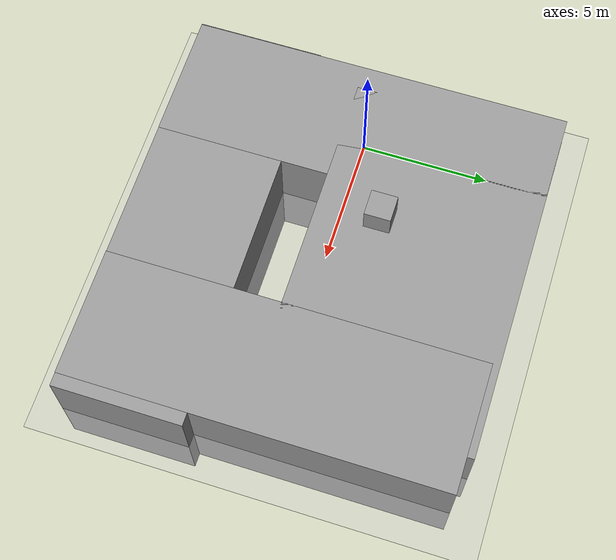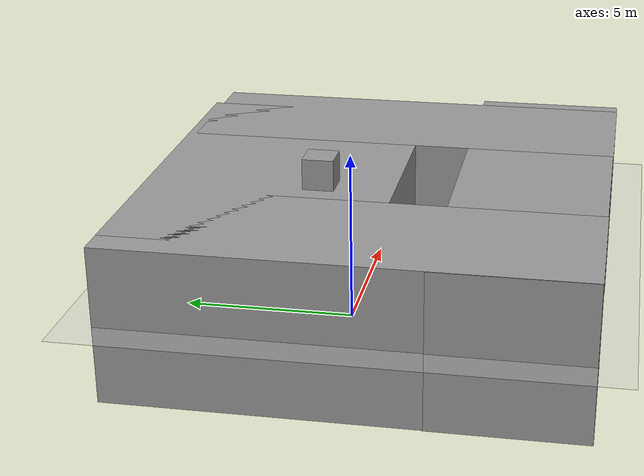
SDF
<sdf version="1.6">
 <world name="base_world">
  <plugin name="gazebo_ros_state" filename="libgazebo_ros_state.so">
   <ros><namespace>/gazebo</namespace><argument>model_states:=model_states_demo</argument></ros>
   <update_rate>1000.0</update_rate>
  </plugin>
  <physics name="default_physics" default="0" type="ode">
   <max_step_size>0.001</max_step_size>
   <real_time_factor>1</real_time_factor>
   <real_time_update_rate>1000</real_time_update_rate>
  </physics>
  <light name="sun" type="directional">
   <pose>0 0 10 0 -0 0</pose>
   <diffuse>0.8 0.8 0.8 1</diffuse>
   <specular>0.2 0.2 0.2 1</specular>
   <attenuation>
    <range>1000</range>
    <constant>0.9</constant>
    <linear>0.01</linear>
    <quadratic>0.001</quadratic>
   </attenuation>
   <direction>-0.5 0.1 -0.9</direction>
  </light>
  <model name="ground_plane">
   <static>1</static>
   <link name="link">
    <collision name="collision">
     <geometry><plane><normal>0 0 1</normal><size>100 100</size></plane></geometry>
     <surface>
      <contact><collide_bitmask>65535</collide_bitmask></contact>
      <friction><ode><mu>100</mu><mu2>50</mu2></ode></friction>
     </surface>
    </collision>
    <visual name="visual">
     <cast_shadows>0</cast_shadows>
     <geometry><plane><normal>0 0 1</normal><size>100 100</size></plane></geometry>
     <material>
      <script><uri>file://media/materials/scripts/gazebo.material</uri><name>Gazebo/Grey</name></script>
     </material>
    </visual>
   </link>
  </model>
  <gravity>0 0 -9.81</gravity>
  <magnetic_field>6e-06 2.3e-05 -4.2e-05</magnetic_field>
  <atmosphere type="adiabatic"/>
  <scene><ambient>0.4 0.4 0.4 1</ambient><background>0.7 0.7 0.7 1</background><shadows>1</shadows></scene>
  <audio><device>default</device></audio>
  <spherical_coordinates>
   <surface_model>EARTH_WGS84</surface_model>
   <latitude_deg>0</latitude_deg>
   <longitude_deg>0</longitude_deg>
   <elevation>0</elevation>
   <heading_deg>0</heading_deg>
  </spherical_coordinates>
  <model name="static_box_0">
   <link name="link">
    <inertial>
     <mass>0.0183792</mass>
     <inertia>
      <ixx>0.0035453</ixx>
      <ixy>0</ixy>
      <ixz>0</ixz>
      <iyy>0.00349943</iyy>
      <iyz>0</iyz>
      <izz>0.00398153</izz>
     </inertia>
    </inertial>
    <visual name="visual">
     <geometry><box><size>15.6622 4.86704 5.01917</size></box></geometry>
     <material>
      <script><name>Gazebo/Grey</name><uri>file://media/materials/scripts/gazebo.material</uri></script>
     </material>
    </visual>
    <collision name="collision">
     <geometry><box><size>15.6622 4.86704 5.01917</size></box></geometry>
     <surface>
      <friction>
       <ode><mu>1</mu><mu2>1</mu2><fdir1>0 0 0</fdir1><slip1>0</slip1><slip2>0</slip2></ode>
       <torsional>
        <coefficient>1</coefficient>
        <patch_radius>0</patch_radius>
        <surface_radius>0</surface_radius>
        <use_patch_radius>1</use_patch_radius>
        <ode><slip>0</slip></ode>
       </torsional>
      </friction>
      <bounce><restitution_coefficient>0</restitution_coefficient><threshold>1e+06</threshold></bounce>
      <contact>
       <collide_without_contact>0</collide_without_contact>
       <collide_without_contact_bitmask>1</collide_without_contact_bitmask>
       <collide_bitmask>1</collide_bitmask>
       <ode>
        <soft_cfm>0</soft_cfm>
        <soft_erp>0.2</soft_erp>
        <kp>1e+13</kp>
        <kd>1</kd>
        <max_vel>0.01</max_vel>
        <min_depth>0</min_depth>
       </ode>
       <bullet>
        <split_impulse>1</split_impulse>
        <split_impulse_penetration_threshold>-0.01</split_impulse_penetration_threshold>
        <soft_cfm>0</soft_cfm>
        <soft_erp>0.2</soft_erp>
        <kp>1e+13</kp>
        <kd>1</kd>
       </bullet>
      </contact>
     </surface>
    </collision>
   </link>
   <static>1</static>
   <pose>5.79168 -4.87029 -0 0 -0 0</pose>
  </model>
  <model name="static_box_0_clone">
   <link name="link">
    <inertial>
     <mass>0.0183792</mass>
     <inertia>
      <ixx>0.0035453</ixx>
      <ixy>0</ixy>
      <ixz>0</ixz>
      <iyy>0.00349943</iyy>
      <iyz>0</iyz>
      <izz>0.00398153</izz>
     </inertia>
    </inertial>
    <visual name="visual">
     <geometry><box><size>12.8527 7.9945 5.01918</size></box></geometry>
     <material>
      <script><name>Gazebo/Grey</name><uri>file://media/materials/scripts/gazebo.material</uri></script>
     </material>
    </visual>
    <collision name="collision">
     <geometry><box><size>12.8527 7.9945 5.01918</size></box></geometry>
     <surface>
      <friction>
       <ode><mu>1</mu><mu2>1</mu2><fdir1>0 0 0</fdir1><slip1>0</slip1><slip2>0</slip2></ode>
       <torsional>
        <coefficient>1</coefficient>
        <patch_radius>0</patch_radius>
        <surface_radius>0</surface_radius>
        <use_patch_radius>1</use_patch_radius>
        <ode><slip>0</slip></ode>
       </torsional>
      </friction>
      <bounce><restitution_coefficient>0</restitution_coefficient><threshold>1e+06</threshold></bounce>
      <contact>
       <collide_without_contact>0</collide_without_contact>
       <collide_without_contact_bitmask>1</collide_without_contact_bitmask>
       <collide_bitmask>1</collide_bitmask>
       <ode>
        <soft_cfm>0</soft_cfm>
        <soft_erp>0.2</soft_erp>
        <kp>1e+13</kp>
        <kd>1</kd>
        <max_vel>0.01</max_vel>
        <min_depth>0</min_depth>
       </ode>
       <bullet>
        <split_impulse>1</split_impulse>
        <split_impulse_penetration_threshold>-0.01</split_impulse_penetration_threshold>
        <soft_cfm>0</soft_cfm>
        <soft_erp>0.2</soft_erp>
        <kp>1e+13</kp>
        <kd>1</kd>
       </bullet>
      </contact>
     </surface>
    </collision>
   </link>
   <static>1</static>
   <pose>5.33497 3.35538 0 0 -0 0</pose>
  </model>
  <model name="static_box_0_clone_0">
   <link name="link">
    <inertial>
     <mass>0.0183792</mass>
     <inertia>
      <ixx>0.0035453</ixx>
      <ixy>0</ixy>
      <ixz>0</ixz>
      <iyy>0.00349943</iyy>
      <iyz>0</iyz>
      <izz>0.00398153</izz>
     </inertia>
    </inertial>
    <visual name="visual">
     <geometry><box><size>14.6579 4.86704 5.01918</size></box></geometry>
     <material>
      <script><name>Gazebo/Grey</name><uri>file://media/materials/scripts/gazebo.material</uri></script>
     </material>
    </visual>
    <collision name="collision">
     <geometry><box><size>14.6579 4.86704 5.01918</size></box></geometry>
     <surface>
      <friction>
       <ode><mu>1</mu><mu2>1</mu2><fdir1>0 0 0</fdir1><slip1>0</slip1><slip2>0</slip2></ode>
       <torsional>
        <coefficient>1</coefficient>
        <patch_radius>0</patch_radius>
        <surface_radius>0</surface_radius>
        <use_patch_radius>1</use_patch_radius>
        <ode><slip>0</slip></ode>
       </torsional>
      </friction>
      <bounce><restitution_coefficient>0</restitution_coefficient><threshold>1e+06</threshold></bounce>
      <contact>
       <collide_without_contact>0</collide_without_contact>
       <collide_without_contact_bitmask>1</collide_without_contact_bitmask>
       <collide_bitmask>1</collide_bitmask>
       <ode>
        <soft_cfm>0</soft_cfm>
        <soft_erp>0.2</soft_erp>
        <kp>1e+13</kp>
        <kd>1</kd>
        <max_vel>0.01</max_vel>
        <min_depth>0</min_depth>
       </ode>
       <bullet>
        <split_impulse>1</split_impulse>
        <split_impulse_penetration_threshold>-0.01</split_impulse_penetration_threshold>
        <soft_cfm>0</soft_cfm>
        <soft_erp>0.2</soft_erp>
        <kp>1e+13</kp>
        <kd>1</kd>
       </bullet>
      </contact>
     </surface>
    </collision>
   </link>
   <static>1</static>
   <pose>0.419527 0.015245 0 0 -0 1.5708</pose>
  </model>
  <model name="static_box_0_clone_0_clone">
   <link name="link">
    <inertial>
     <mass>0.0183792</mass>
     <inertia>
      <ixx>0.0035453</ixx>
      <ixy>0</ixy>
      <ixz>0</ixz>
      <iyy>0.00349943</iyy>
      <iyz>0</iyz>
      <izz>0.00398153</izz>
     </inertia>
    </inertial>
    <visual name="visual">
     <geometry><box><size>14.4012 4.86704 5.01918</size></box></geometry>
     <material>
      <script><name>Gazebo/Grey</name><uri>file://media/materials/scripts/gazebo.material</uri></script>
     </material>
    </visual>
    <collision name="collision">
     <geometry><box><size>14.4012 4.86704 5.01918</size></box></geometry>
     <surface>
      <friction>
       <ode><mu>1</mu><mu2>1</mu2><fdir1>0 0 0</fdir1><slip1>0</slip1><slip2>0</slip2></ode>
       <torsional>
        <coefficient>1</coefficient>
        <patch_radius>0</patch_radius>
        <surface_radius>0</surface_radius>
        <use_patch_radius>1</use_patch_radius>
        <ode><slip>0</slip></ode>
       </torsional>
      </friction>
      <bounce><restitution_coefficient>0</restitution_coefficient><threshold>1e+06</threshold></bounce>
      <contact>
       <collide_without_contact>0</collide_without_contact>
       <collide_without_contact_bitmask>1</collide_without_contact_bitmask>
       <collide_bitmask>1</collide_bitmask>
       <ode>
        <soft_cfm>0</soft_cfm>
        <soft_erp>0.2</soft_erp>
        <kp>1e+13</kp>
        <kd>1</kd>
        <max_vel>0.01</max_vel>
        <min_depth>0</min_depth>
       </ode>
       <bullet>
        <split_impulse>1</split_impulse>
        <split_impulse_penetration_threshold>-0.01</split_impulse_penetration_threshold>
        <soft_cfm>0</soft_cfm>
        <soft_erp>0.2</soft_erp>
        <kp>1e+13</kp>
        <kd>1</kd>
       </bullet>
      </contact>
     </surface>
    </collision>
   </link>
   <static>1</static>
   <pose>10.6912 -0.117232 0 0 -0 1.5708</pose>
  </model>
  <model name="unit_box_0">
   <pose>4.01341 1.74109 3.00959 0 -0 0</pose>
   <link name="link">
    <inertial>
     <mass>1</mass>
     <inertia>
      <ixx>0.166667</ixx>
      <ixy>0</ixy>
      <ixz>0</ixz>
      <iyy>0.166667</iyy>
      <iyz>0</iyz>
      <izz>0.166667</izz>
     </inertia>
    </inertial>
    <collision name="collision"><geometry><box><size>1 1 1</size></box></geometry></collision>
    <visual name="visual">
     <geometry><box><size>1 1 1</size></box></geometry>
     <material>
      <script><name>Gazebo/Grey</name><uri>file://media/materials/scripts/gazebo.material</uri></script>
     </material>
    </visual>
   </link>
  </model>
 </world>
</sdf>
